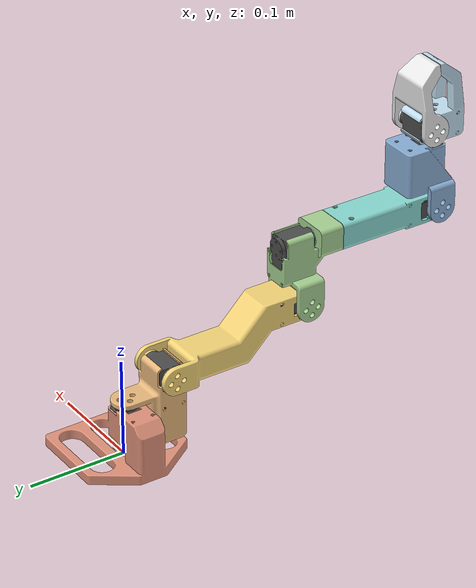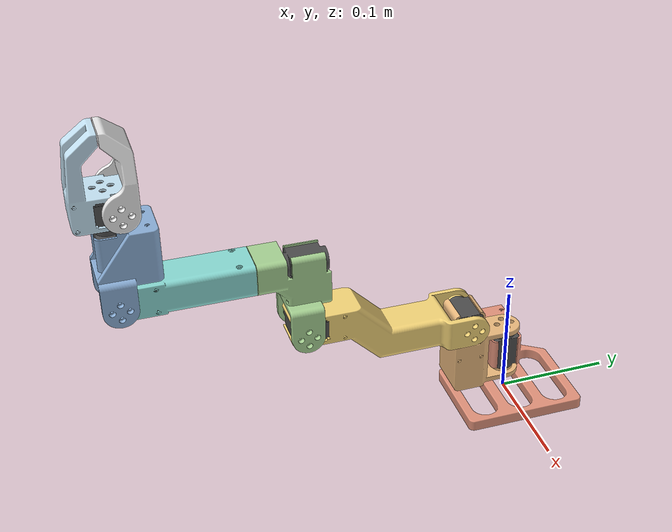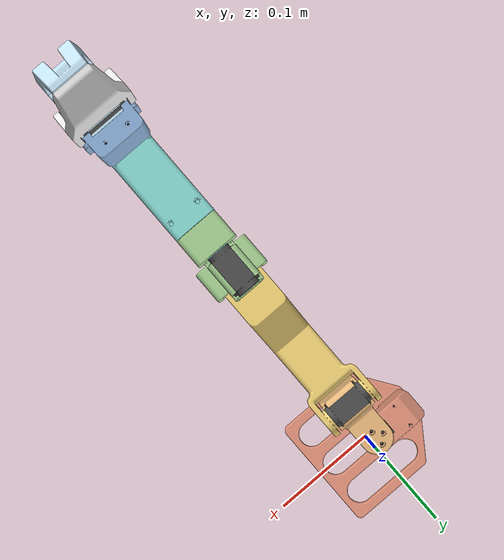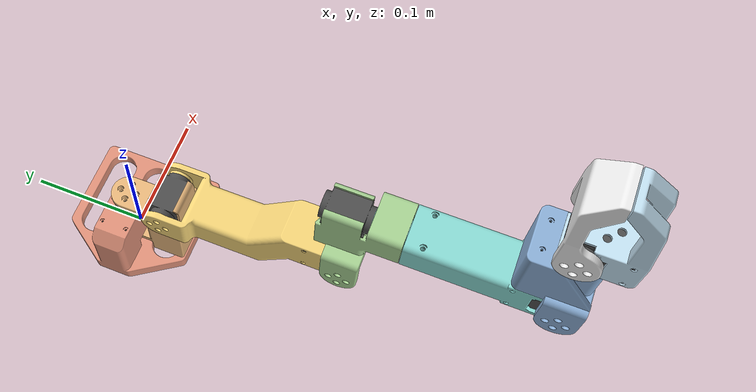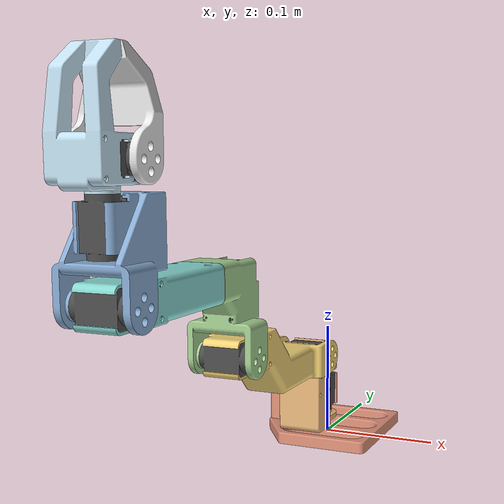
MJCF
<?xml version="1.0" ?>
<!-- Generated using onshape-to-robot -->
<!-- Onshape https://cad.onshape.com/documents/1a88437c85175db425541dec/w/f09085f8d805c32bea80c0e5/e/55becd3b7ca1df2a8f0a7630 -->
<mujoco model="okay_robot">
  <compiler angle="radian" meshdir="./assets" autolimits="true"/>
  <default>
    <default class="okay_robot">
      <joint frictionloss="0.1" armature="0.005"/>
      <position kp="50" dampratio="1"/>
      <default class="visual">
        <geom type="mesh" contype="0" conaffinity="0" group="2"/>
      </default>
      <default class="collision">
        <geom group="3"/>
      </default>
    </default>
  </default>
  <worldbody>
    <!-- Link base_link -->
    <body name="base_link" pos="0 0 0" quat="1 0 0 0" childclass="okay_robot">
      <inertial pos="0 0 0" mass="1e-09" fullinertia="1e-09 1e-09 1e-09 0 0 0"/>
      <!-- Part servo_reference -->
      <geom type="mesh" class="visual" pos="-0.0190155 2.08167e-17 0.0535" quat="1 0 -1.66533e-16 -0" mesh="servo_reference" material="servo_reference_material"/>
      <!-- Part base_link -->
      <geom type="mesh" class="visual" pos="-0.00651548 2.25514e-17 0.0391" quat="1 0 0 0" mesh="base_link" material="base_link_material"/>
      <!-- Link link1 -->
      <body name="link1" pos="-0.00651548 8.67362e-17 0.0391" quat="0.707107 -5.6703e-16 -6.66134e-16 -0.707107">
        <!-- Joint from base_link to link1 -->
        <joint axis="0 0 1" name="joint1" type="hinge" range="0.0 3.14"/>
        <inertial pos="0 0 0" mass="1e-09" fullinertia="1e-09 1e-09 1e-09 0 0 0"/>
        <!-- Part link1 -->
        <geom type="mesh" class="visual" pos="0.02 0 0" quat="1 0 8.1532e-17 7.14691e-18" mesh="link1" material="link1_material"/>
        <geom type="mesh" class="collision" pos="0.02 0 0" quat="1 0 8.1532e-17 7.14691e-18" mesh="link1" material="link1_material"/>
        <!-- Part servo_reference_2 -->
        <geom type="mesh" class="visual" pos="0.04 0.0144 0.0295" quat="0.5 -0.5 -0.5 -0.5" mesh="servo_reference" material="servo_reference_material"/>
        <!-- Link link2 -->
        <body name="link2" pos="0.04 8.67362e-19 0.042" quat="0.5 0.5 0.5 -0.5">
          <!-- Joint from link1 to link2 -->
          <joint axis="0 0 1" name="joint2" type="hinge" range="0.0 3.14"/>
          <inertial pos="0 0 0" mass="1e-09" fullinertia="1e-09 1e-09 1e-09 0 0 0"/>
          <!-- Part servo_reference_3 -->
          <geom type="mesh" class="visual" pos="-0.028 0.1375 -0.0144" quat="5.12392e-17 0.707107 0.707107 -6.83411e-17" mesh="servo_reference" material="servo_reference_material"/>
          <!-- Part link2 -->
          <geom type="mesh" class="visual" pos="0 0.075 0" quat="0.5 -0.5 0.5 -0.5" mesh="link2" material="link2_material"/>
          <geom type="mesh" class="collision" pos="0 0.075 0" quat="0.5 -0.5 0.5 -0.5" mesh="link2" material="link2_material"/>
          <!-- Link link3 -->
          <body name="link3" pos="-0.028 0.15 -8.67362e-19" quat="2.00665e-16 -1.92052e-15 -1.44329e-15 1">
            <!-- Joint from link2 to link3 -->
            <joint axis="0 0 1" name="joint3" type="hinge" range="3.14 6.28"/>
            <inertial pos="0 0 0" mass="1e-09" fullinertia="1e-09 1e-09 1e-09 0 0 0"/>
            <!-- Part servo_reference_4 -->
            <geom type="mesh" class="visual" pos="0.0475 0.0194 -2.60209e-18" quat="0.707107 -0.707107 1.22125e-15 1.37638e-15" mesh="servo_reference" material="servo_reference_material"/>
            <!-- Part link3 -->
            <geom type="mesh" class="visual" pos="0.06 -0.0075 8.67362e-19" quat="0.5 -0.5 0.5 -0.5" mesh="link3" material="link3_material"/>
            <geom type="mesh" class="collision" pos="0.06 -0.0075 8.67362e-19" quat="0.5 -0.5 0.5 -0.5" mesh="link3" material="link3_material"/>
            <!-- Link link4a -->
            <body name="link4a" pos="0.06 0.005 1.52309e-15" quat="1.5683e-15 1.19431e-15 0.707107 -0.707107">
              <!-- Joint from link3 to link4a -->
              <joint axis="0 0 1" name="joint4" type="hinge" range="0.0 6.28"/>
              <inertial pos="0 0 0" mass="1e-09" fullinertia="1e-09 1e-09 1e-09 0 0 0"/>
              <!-- Part link4a -->
              <geom type="mesh" class="visual" pos="0 8.67362e-19 0.0775" quat="2.24367e-32 0.707107 -0 0.707107" mesh="link4a" material="link4a_material"/>
              <geom type="mesh" class="collision" pos="0 8.67362e-19 0.0775" quat="2.24367e-32 0.707107 -0 0.707107" mesh="link4a" material="link4a_material"/>
              <!-- Part servo_reference_5 -->
              <geom type="mesh" class="visual" pos="0 -0.0144 0.1425" quat="0.5 0.5 -0.5 0.5" mesh="servo_reference" material="servo_reference_material"/>
              <!-- Part link4b -->
              <geom type="mesh" class="visual" pos="0 -6.07153e-18 0.0775" quat="4.34867e-29 -0.707107 -0 -0.707107" mesh="link4b" material="link4b_material"/>
              <geom type="mesh" class="collision" pos="0 -6.07153e-18 0.0775" quat="4.34867e-29 -0.707107 -0 -0.707107" mesh="link4b" material="link4b_material"/>
              <!-- Link link5 -->
              <body name="link5" pos="2.77556e-17 2.3332e-16 0.155" quat="7.09827e-16 1.68875e-16 -0.707107 -0.707107">
                <!-- Joint from link4a to link5 -->
                <joint axis="0 0 1" name="joint5" type="hinge" range="0.0 3.14"/>
                <inertial pos="0 0 0" mass="1e-09" fullinertia="1e-09 1e-09 1e-09 0 0 0"/>
                <!-- Part link5 -->
                <geom type="mesh" class="visual" pos="0.023 0 8.67362e-19" quat="0.707107 -0.707107 0 -1.26105e-31" mesh="link5" material="link5_material"/>
                <geom type="mesh" class="collision" pos="0.023 0 8.67362e-19" quat="0.707107 -0.707107 0 -1.26105e-31" mesh="link5" material="link5_material"/>
                <!-- Part servo_reference_6 -->
                <geom type="mesh" class="visual" pos="0.0604 -0.0125 0" quat="0.5 0.5 0.5 0.5" mesh="servo_reference" material="servo_reference_material"/>
                <!-- Link link6 -->
                <body name="link6" pos="0.046 -5.55112e-16 8.67362e-19" quat="0.5 -0.5 0.5 -0.5">
                  <!-- Joint from link5 to link6 -->
                  <joint axis="0 0 1" name="joint6" type="hinge" range="0.0 6.28"/>
                  <inertial pos="0 0 0" mass="1e-09" fullinertia="1e-09 1e-09 1e-09 0 0 0"/>
                  <!-- Part servo_reference_7 -->
                  <geom type="mesh" class="visual" pos="-0.0025 -0.0144 0.038" quat="0.707107 0.707107 0 -3.92523e-17" mesh="servo_reference" material="servo_reference_material"/>
                  <!-- Part link6 -->
                  <geom type="mesh" class="visual" pos="5.55112e-17 -8.67362e-19 0.019" quat="2.6622e-33 0.707107 -0 0.707107" mesh="link6" material="link6_material"/>
                  <geom type="mesh" class="collision" pos="5.55112e-17 -8.67362e-19 0.019" quat="2.6622e-33 0.707107 -0 0.707107" mesh="link6" material="link6_material"/>
                  <!-- Link finger_link -->
                  <body name="finger_link" pos="0.01 1.04083e-17 0.038" quat="0.707107 -0.707107 -3.77476e-15 -3.84835e-15">
                    <!-- Joint from link6 to finger_link -->
                    <joint axis="0 0 1" name="joint7" type="hinge" range="0.0 1.57"/>
                    <inertial pos="0 0 0" mass="1e-09" fullinertia="1e-09 1e-09 1e-09 0 0 0"/>
                    <!-- Part finger_link -->
                    <geom type="mesh" class="visual" pos="-5.55112e-17 0 0.000504912" quat="0.5 -0.5 0.5 -0.5" mesh="finger_link" material="finger_link_material"/>
                    <geom type="mesh" class="collision" pos="-5.55112e-17 0 0.000504912" quat="0.5 -0.5 0.5 -0.5" mesh="finger_link" material="finger_link_material"/>
                  </body>
                </body>
              </body>
            </body>
          </body>
        </body>
      </body>
    </body>
  </worldbody>
  <asset>
    <mesh file="link1.stl"/>
    <mesh file="finger_link.stl"/>
    <mesh file="link6.stl"/>
    <mesh file="link4b.stl"/>
    <mesh file="base_link.stl"/>
    <mesh file="link4a.stl"/>
    <mesh file="link3.stl"/>
    <mesh file="servo_reference.stl"/>
    <mesh file="link2.stl"/>
    <mesh file="link5.stl"/>
    <material name="servo_reference_material" rgba="0.301961 0.301961 0.301961 1"/>
    <material name="base_link_material" rgba="0.882353 0.572549 0.478431 1"/>
    <material name="link1_material" rgba="0.917647 0.72549 0.490196 1"/>
    <material name="link2_material" rgba="0.960784 0.835294 0.470588 1"/>
    <material name="link3_material" rgba="0.654902 0.823529 0.576471 1"/>
    <material name="link4a_material" rgba="0.537255 0.854902 0.827451 1"/>
    <material name="link4b_material" rgba="0.537255 0.854902 0.827451 1"/>
    <material name="link5_material" rgba="0.541176 0.682353 0.839216 1"/>
    <material name="link6_material" rgba="0.768627 0.886275 0.952941 1"/>
    <material name="finger_link_material" rgba="0.917647 0.917647 0.917647 1"/>
  </asset>
  <actuator>
    <position class="okay_robot" name="joint1" joint="joint1" inheritrange="1"/>
    <position class="okay_robot" name="joint2" joint="joint2" inheritrange="1"/>
    <position class="okay_robot" name="joint3" joint="joint3" inheritrange="1"/>
    <position class="okay_robot" name="joint4" joint="joint4" inheritrange="1"/>
    <position class="okay_robot" name="joint5" joint="joint5" inheritrange="1"/>
    <position class="okay_robot" name="joint6" joint="joint6" inheritrange="1"/>
    <position class="okay_robot" name="joint7" joint="joint7" inheritrange="1"/>
  </actuator>
  <equality/>
</mujoco>
